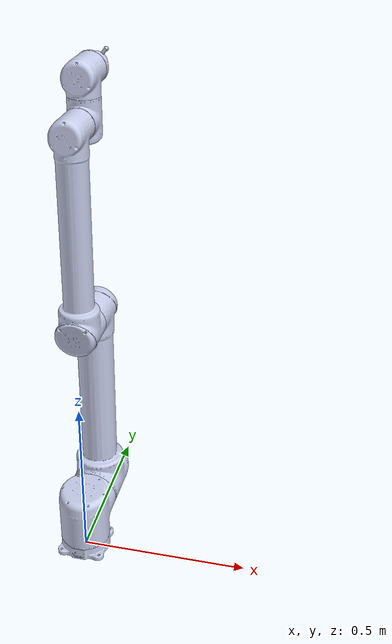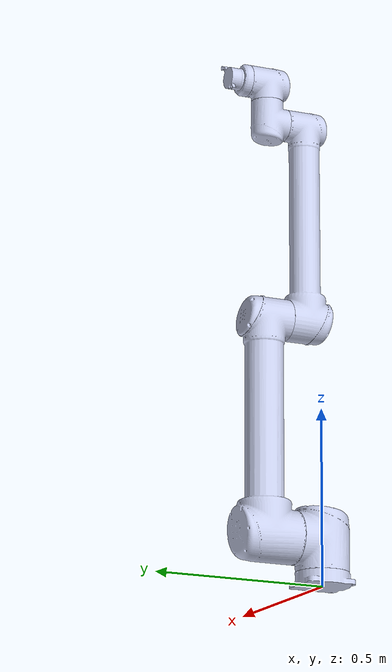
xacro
<?xml version="1.0" ?>
<robot
  name="ur10" xmlns:xacro="http://ros.org/wiki/xacro">

  <link name="world"/>
      <joint name="base_link_joint" type="fixed">
          <origin xyz="0 0 0" rpy="0 0 0"/>
          <parent link="world"/>
          <child link="base_link"/>
      </joint>

  <link
    name="base_link">
    <inertial>
      <origin
        xyz="6.99094974730696E-06 -0.000159353517555083 0.0184354407542913"
        rpy="0 0 0" />
      <mass
        value="0.706324323688928" />
      <inertia
        ixx="0.00115557612091012"
        ixy="4.80089164310127E-08"
        ixz="7.8755061911207E-08"
        iyy="0.00114584541323477"
        iyz="1.99545213436521E-07"
        izz="0.00212897019994227" />
    </inertial>
    <visual>
      <origin
        xyz="0 0 0"
        rpy="0 0 0" />
      <geometry>
        <mesh
          filename="package://ur10/meshes/base_link.STL" />
      </geometry>
      <material
        name="">
        <color
          rgba="0.792156862745098 0.819607843137255 0.933333333333333 1" />
      </material>
    </visual>
    <collision>
      <origin
        xyz="0 0 0"
        rpy="0 0 0" />
      <geometry>
        <mesh
          filename="package://ur10/meshes/base_link.STL" />
      </geometry>
    </collision>
  </link>
  <link
    name="link1">
    <inertial>
      <origin
        xyz="4.71773526128372E-06 0.0120536615771912 0.0784763122055467"
        rpy="0 0 0" />
      <mass
        value="3.07355036547625" />
      <inertia
        ixx="0.0114771434116216"
        ixy="-2.06679278249525E-07"
        ixz="-9.91030270639159E-07"
        iyy="0.0107166357827127"
        iyz="-0.000858549847549967"
        izz="0.0101197474335884" />
    </inertial>
    <visual>
      <origin
        xyz="0 0 0"
        rpy="0 0 0" />
      <geometry>
        <mesh
          filename="package://ur10/meshes/link1.STL" />
      </geometry>
      <material
        name="">
        <color
          rgba="0.792156862745098 0.819607843137255 0.933333333333333 1" />
      </material>
    </visual>
    <collision>
      <origin
        xyz="0 0 0"
        rpy="0 0 0" />
      <geometry>
        <mesh
          filename="package://ur10/meshes/link1.STL" />
      </geometry>
    </collision>
  </link>
  <joint
    name="joint1"
    type="revolute">
    <origin
      xyz="0 -0.00043847 0.038"
      rpy="0 0 0" />
    <parent
      link="base_link" />
    <child
      link="link1" />
    <axis
      xyz="0 0 1" />
    <limit
      lower="-50"
      upper="50"
      effort="0"
      velocity="0" />
  </joint>
  <link
    name="link2">
    <inertial>
      <origin
        xyz="-8.33371701090824E-06 -0.251045155802553 0.084336759623579"
        rpy="0 0 0" />
      <mass
        value="8.71240997645227" />
      <inertia
        ixx="0.0965259604237775"
        ixy="-5.65864767608362E-09"
        ixz="3.68281322600701E-06"
        iyy="0.0199170991926185"
        iyz="0.000589153449770856"
        izz="0.0949166238737584" />
    </inertial>
    <visual>
      <origin
        xyz="0 0 0"
        rpy="0 0 0" />
      <geometry>
        <mesh
          filename="package://ur10/meshes/link2.STL" />
      </geometry>
      <material
        name="">
        <color
          rgba="0.792156862745098 0.819607843137255 0.933333333333333 1" />
      </material>
    </visual>
    <collision>
      <origin
        xyz="0 0 0"
        rpy="0 0 0" />
      <geometry>
        <mesh
          filename="package://ur10/meshes/link2.STL" />
      </geometry>
    </collision>
  </link>
  <joint
    name="joint2"
    type="revolute">
    <origin
      xyz="0 0.086438 0.09"
      rpy="-1.5708 0 0" />
    <parent
      link="link1" />
    <child
      link="link2" />
    <axis
      xyz="0 0 1" />
    <limit
      lower="-50"
      upper="50"
      effort="0"
      velocity="0" />
  </joint>
  <link
    name="link3">
    <inertial>
      <origin
        xyz="0.256921622587735 -0.00114919188339613 0.05646938880001"
        rpy="0 0 0" />
      <mass
        value="4.65343475090671" />
      <inertia
        ixx="0.00595615847264998"
        ixy="0.000204077851163617"
        ixz="-0.000130408961366202"
        iyy="0.0517117713534692"
        iyz="1.56550769818929E-07"
        izz="0.0514235400102428" />
    </inertial>
    <visual>
      <origin
        xyz="0 0 0"
        rpy="0 0 0" />
      <geometry>
        <mesh
          filename="package://ur10/meshes/link3.STL" />
      </geometry>
      <material
        name="">
        <color
          rgba="0.792156862745098 0.819607843137255 0.933333333333333 1" />
      </material>
    </visual>
    <collision>
      <origin
        xyz="0 0 0"
        rpy="0 0 0" />
      <geometry>
        <mesh
          filename="package://ur10/meshes/link3.STL" />
      </geometry>
    </collision>
  </link>
  <joint
    name="joint3"
    type="revolute">
    <origin
      xyz="0 -0.6129 0.021891"
      rpy="-3.1416 0 -1.5708" />
    <parent
      link="link2" />
    <child
      link="link3" />
    <axis
      xyz="0 0 1" />
    <limit
      lower="-50"
      upper="50"
      effort="0"
      velocity="0" />
  </joint>
  <link
    name="link4">
    <inertial>
      <origin
        xyz="0.00973735157071443 2.67860039353252E-06 0.0463972280659702"
        rpy="0 0 0" />
      <mass
        value="0.728503733480583" />
      <inertia
        ixx="0.000883756617840841"
        ixy="7.58522256251456E-08"
        ixz="-9.07970442506574E-05"
        iyy="0.00111504666078434"
        iyz="3.05789109797123E-08"
        izz="0.00103094357618064" />
    </inertial>
    <visual>
      <origin
        xyz="0 0 0"
        rpy="0 0 0" />
      <geometry>
        <mesh
          filename="package://ur10/meshes/link4.STL" />
      </geometry>
      <material
        name="">
        <color
          rgba="0.792156862745098 0.819607843137255 0.933333333333333 1" />
      </material>
    </visual>
    <collision>
      <origin
        xyz="0 0 0"
        rpy="0 0 0" />
      <geometry>
        <mesh
          filename="package://ur10/meshes/link4.STL" />
      </geometry>
    </collision>
  </link>
  <joint
    name="joint4"
    type="revolute">
    <origin
      xyz="0.57159 -0.0025605 -0.002"
      rpy="-3.1416 0 0" />
    <parent
      link="link3" />
    <child
      link="link4" />
    <axis
      xyz="0 0 1" />
    <limit
      lower="-50"
      upper="50"
      effort="0"
      velocity="0" />
  </joint>
  <link
    name="link5">
    <inertial>
      <origin
        xyz="-3.54827412121783E-06 0.00973751267937696 0.0463971682147017"
        rpy="0 0 0" />
      <mass
        value="0.728508494010888" />
      <inertia
        ixx="0.0011150507496292"
        ixy="-7.87059566917945E-08"
        ixz="-2.89888899452125E-08"
        iyy="0.000883745086730893"
        iyz="-9.07966561134036E-05"
        izz="0.00103092076650608" />
    </inertial>
    <visual>
      <origin
        xyz="0 0 0"
        rpy="0 0 0" />
      <geometry>
        <mesh
          filename="package://ur10/meshes/link5.STL" />
      </geometry>
      <material
        name="">
        <color
          rgba="0.792156862745098 0.819607843137255 0.933333333333333 1" />
      </material>
    </visual>
    <collision>
      <origin
        xyz="0 0 0"
        rpy="0 0 0" />
      <geometry>
        <mesh
          filename="package://ur10/meshes/link5.STL" />
      </geometry>
    </collision>
  </link>
  <joint
    name="joint5"
    type="revolute">
    <origin
      xyz="0.0617 0 0.054"
      rpy="1.5708 0 1.5708" />
    <parent
      link="link4" />
    <child
      link="link5" />
    <axis
      xyz="0 0 1" />
    <limit
      lower="-50"
      upper="50"
      effort="0"
      velocity="0" />
  </joint>
  <link
    name="link6">
    <inertial>
      <origin
        xyz="-1.7505722804359E-05 0.000603631690059281 -0.042393391727179"
        rpy="0 0 0" />
      <mass
        value="0.251003443936112" />
      <inertia
        ixx="0.000114086534671522"
        ixy="2.97539535553898E-06"
        ixz="1.70309941223874E-08"
        iyy="0.000117618235951477"
        iyz="-4.78246250199236E-07"
        izz="0.000197153479224867" />
    </inertial>
    <visual>
      <origin
        xyz="0 0 0"
        rpy="0 0 0" />
      <geometry>
        <mesh
          filename="package://ur10/meshes/link6.STL" />
      </geometry>
      <material
        name="">
        <color
          rgba="0.792156862745098 0.819607843137255 0.933333333333333 1" />
      </material>
    </visual>
    <collision>
      <origin
        xyz="0 0 0"
        rpy="0 0 0" />
      <geometry>
        <mesh
          filename="package://ur10/meshes/link6.STL" />
      </geometry>
    </collision>
  </link>
  <joint
    name="joint6"
    type="revolute">
    <origin
      xyz="0 0.1292 0.054"
      rpy="-1.5708 0 0" />
    <parent
      link="link5" />
    <child
      link="link6" />
    <axis
      xyz="0 0 1" />
    <limit
      lower="-50"
      upper="50"
      effort="0"
      velocity="0" />
  </joint>

   <!-- ##### Joint Controlllers #####-->

    <ros2_control name="GazeboSystem" type="system">
    <hardware>
      <plugin>gazebo_ros2_control/GazeboSystem</plugin>
      </hardware>

      <!-- Joint 1 position controller-->
      <joint name="joint1">
        <command_interface name="position">
          <param name="min">-6.2832</param>
          <param name="max">6.2832</param>
        </command_interface>
        <state_interface name="position"/>
        <state_interface name="velocity"/>
      </joint>

      <!-- Joint 1 velocity controller-->
      <joint name="joint1">
        <command_interface name="velocity">
          <param name="min">-1000</param>
          <param name="max">1000</param>
        </command_interface>
        <state_interface name="position"/>
        <state_interface name="velocity"/>
      </joint>

      <!-- Joint 2 controller-->
      <joint name="joint2">
        <command_interface name="position">
          <param name="min">-6.2832</param>
          <param name="max">6.2832</param>
        </command_interface>
        <state_interface name="position"/>
        <state_interface name="velocity"/>
      </joint>

      <!-- Joint 2 velocity controller-->
      <joint name="joint2">
        <command_interface name="velocity">
          <param name="min">-1000</param>
          <param name="max">1000</param>
        </command_interface>
        <state_interface name="position"/>
        <state_interface name="velocity"/>
      </joint>

      <!-- Joint 3 position controller-->
      <joint name="joint3">
        <command_interface name="position">
          <param name="min">-2.7925</param>
          <param name="max">2.7925</param>
        </command_interface>
        <state_interface name="position"/>
        <state_interface name="velocity"/>
      </joint>

      <!-- Joint 3 velocity controller-->
      <joint name="joint3">
        <command_interface name="velocity">
          <param name="min">-1000</param>
          <param name="max">1000</param>
        </command_interface>
        <state_interface name="position"/>
        <state_interface name="velocity"/>
      </joint>

      <!-- Joint 4 position controller-->
      <joint name="joint4">
        <command_interface name="position">
          <param name="min">-6.2832</param>
          <param name="max">6.2832</param>
        </command_interface>
        <state_interface name="position"/>
        <state_interface name="velocity"/>
      </joint>

      <!-- Joint 4 velocity controller-->
      <joint name="joint4">
        <command_interface name="velocity">
          <param name="min">-1000</param>
          <param name="max">1000</param>
        </command_interface>
        <state_interface name="position"/>
        <state_interface name="velocity"/>
      </joint>

      <!-- Joint 5 position controller-->
      <joint name="joint5">
        <command_interface name="position">
          <param name="min">-6.2832</param>
          <param name="max">6.2832</param>
        </command_interface>
        <state_interface name="position"/>
        <state_interface name="velocity"/>
      </joint>

      <!-- Joint 5 velocity controller-->
      <joint name="joint1">
        <command_interface name="velocity">
          <param name="min">-1000</param>
          <param name="max">1000</param>
        </command_interface>
        <state_interface name="position"/>
        <state_interface name="velocity"/>
      </joint>

      <!-- Joint 6 position controller-->
      <joint name="joint6">
        <command_interface name="position">
          <param name="min">-6.2832</param>
          <param name="max">6.2832</param>
        </command_interface>
        <state_interface name="position"/>
        <state_interface name="velocity"/>
      </joint>

      <!-- Joint 6 velocity controller-->
      <joint name="joint6">
        <command_interface name="velocity">
          <param name="min">-1000</param>
          <param name="max">1000</param>
        </command_interface>
        <state_interface name="position"/>
        <state_interface name="velocity"/>
      </joint>

    </ros2_control>

  <gazebo>
    <plugin name="gazebo_ros2_control" filename="libgazebo_ros2_control.so">
      <robot_sim_type>gazebo_ros2_control/GazeboSystem</robot_sim_type>
      <parameters>$(find ur10)/config/control.yaml</parameters>
      </plugin>
  </gazebo>

  <gazebo>
  <plugin name='vacuum_gripper' filename='libgazebo_ros_vacuum_gripper.so'>

    <!-- This part can be commented out if not required -->
    <ros>

      <!-- Add a namespace -->

      <namespace>/demo</namespace>

      <!-- Remapping service and topic names -->
      <remapping>switch:=custom_switch</remapping>
      <remapping>grasping:=custom_grasping</remapping>
    </ros>

    <!-- Link associated with gripper -->
    <link_name>link6</link_name>

    <!-- Max distance to attract entities -->
    <max_distance>0.3</max_distance>

    <!-- List of entities to be not attracted by the gripper -->
    <fixed>ground_plane</fixed>
    <fixed>wall</fixed>

  </plugin>
</gazebo>

</robot>
